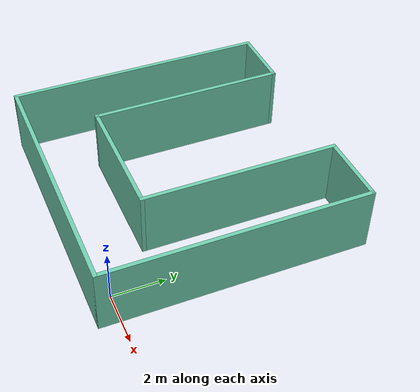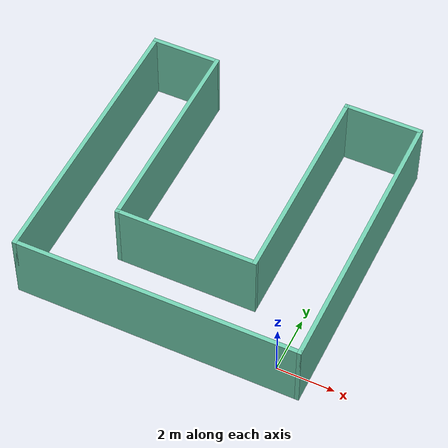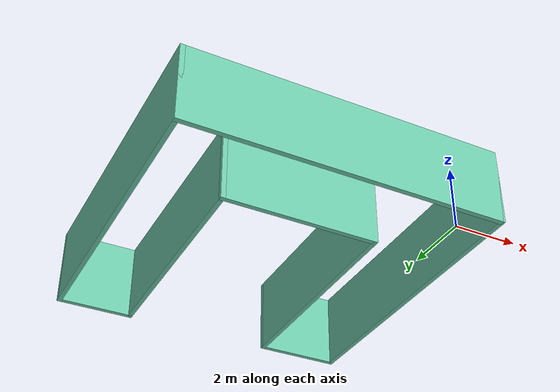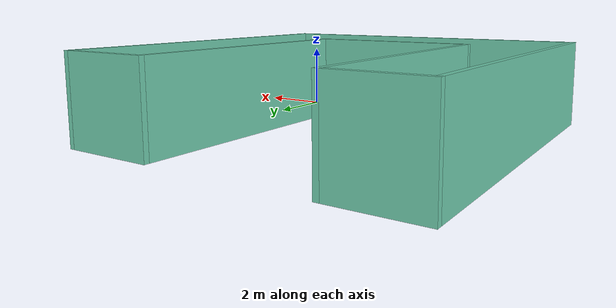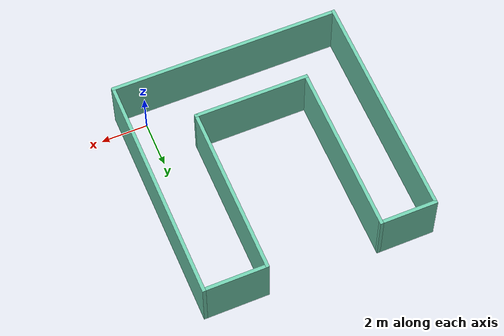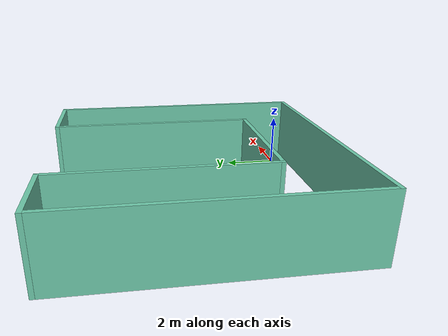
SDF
<?xml version='1.0'?>
<sdf version='1.6'>
  <model name='ZerdeWorld'>
    <pose frame=''>-3.8766 4.2078 0 0 -0 0</pose>
    <link name='Wall_19'>
      <collision name='Wall_19_Collision'>
        <geometry>
          <box>
            <size>2.75 0.15 2.5</size>
          </box>
        </geometry>
        <pose frame=''>0 0 1.25 0 -0 0</pose>
      </collision>
      <visual name='Wall_19_Visual'>
        <pose frame=''>0 0 1.25 0 -0 0</pose>
        <geometry>
          <box>
            <size>2.75 0.15 2.5</size>
          </box>
        </geometry>
        <material>
          <script>
            <uri>file://media/materials/scripts/gazebo.material</uri>
            <name>Gazebo/Grey</name>
          </script>
          <ambient>0.435294 0.796078 0.67451 1</ambient>
        </material>
        <meta>
          <layer>0</layer>
        </meta>
      </visual>
      <pose frame=''>3.575 4.925 0 0 -0 3.14159</pose>
    </link>
    <link name='Wall_20'>
      <collision name='Wall_20_Collision'>
        <geometry>
          <box>
            <size>7.5 0.15 2.5</size>
          </box>
        </geometry>
        <pose frame=''>0 0 1.25 0 -0 0</pose>
      </collision>
      <visual name='Wall_20_Visual'>
        <pose frame=''>0 0 1.25 0 -0 0</pose>
        <geometry>
          <box>
            <size>7.5 0.15 2.5</size>
          </box>
        </geometry>
        <material>
          <script>
            <uri>file://media/materials/scripts/gazebo.material</uri>
            <name>Gazebo/Grey</name>
          </script>
          <ambient>0.435294 0.796078 0.67451 1</ambient>
        </material>
        <meta>
          <layer>0</layer>
        </meta>
      </visual>
      <pose frame=''>2.275 1.25 0 0 0 -1.5708</pose>
    </link>
    <link name='Wall_21'>
      <collision name='Wall_21_Collision'>
        <geometry>
          <box>
            <size>5 0.15 2.5</size>
          </box>
        </geometry>
        <pose frame=''>0 0 1.25 0 -0 0</pose>
      </collision>
      <visual name='Wall_21_Visual'>
        <pose frame=''>0 0 1.25 0 -0 0</pose>
        <geometry>
          <box>
            <size>5 0.15 2.5</size>
          </box>
        </geometry>
        <material>
          <script>
            <uri>file://media/materials/scripts/gazebo.material</uri>
            <name>Gazebo/Grey</name>
          </script>
          <ambient>0.435294 0.796078 0.67451 1</ambient>
        </material>
        <meta>
          <layer>0</layer>
        </meta>
      </visual>
      <pose frame=''>-0.15 -2.425 0 0 -0 3.14159</pose>
    </link>
    <link name='Wall_22'>
      <collision name='Wall_22_Collision'>
        <geometry>
          <box>
            <size>7.5 0.15 2.5</size>
          </box>
        </geometry>
        <pose frame=''>0 0 1.25 0 -0 0</pose>
      </collision>
      <visual name='Wall_22_Visual'>
        <pose frame=''>0 0 1.25 0 -0 0</pose>
        <geometry>
          <box>
            <size>7.5 0.15 2.5</size>
          </box>
        </geometry>
        <material>
          <script>
            <uri>file://media/materials/scripts/gazebo.material</uri>
            <name>Gazebo/Grey</name>
          </script>
          <ambient>0.435294 0.796078 0.67451 1</ambient>
        </material>
        <meta>
          <layer>0</layer>
        </meta>
      </visual>
      <pose frame=''>-2.575 1.25 0 0 -0 1.5708</pose>
    </link>
    <link name='Wall_23'>
      <collision name='Wall_23_Collision'>
        <geometry>
          <box>
            <size>2.5 0.15 2.5</size>
          </box>
        </geometry>
        <pose frame=''>0 0 1.25 0 -0 0</pose>
      </collision>
      <visual name='Wall_23_Visual'>
        <pose frame=''>0 0 1.25 0 -0 0</pose>
        <geometry>
          <box>
            <size>2.5 0.15 2.5</size>
          </box>
        </geometry>
        <material>
          <script>
            <uri>file://media/materials/scripts/gazebo.material</uri>
            <name>Gazebo/Grey</name>
          </script>
          <ambient>0.435294 0.796078 0.67451 1</ambient>
        </material>
        <meta>
          <layer>0</layer>
        </meta>
      </visual>
      <pose frame=''>-3.75 4.925 0 0 -0 3.14159</pose>
    </link>
    <link name='Wall_24'>
      <collision name='Wall_24_Collision'>
        <geometry>
          <box>
            <size>10 0.15 2.5</size>
          </box>
        </geometry>
        <pose frame=''>0 0 1.25 0 -0 0</pose>
      </collision>
      <visual name='Wall_24_Visual'>
        <pose frame=''>0 0 1.25 0 -0 0</pose>
        <geometry>
          <box>
            <size>10 0.15 2.5</size>
          </box>
        </geometry>
        <material>
          <script>
            <uri>file://media/materials/scripts/gazebo.material</uri>
            <name>Gazebo/Grey</name>
          </script>
          <ambient>0.435294 0.796078 0.67451 1</ambient>
        </material>
        <meta>
          <layer>0</layer>
        </meta>
      </visual>
      <pose frame=''>-4.925 0 0 0 0 -1.5708</pose>
    </link>
    <link name='Wall_26'>
      <collision name='Wall_26_Collision'>
        <geometry>
          <box>
            <size>10 0.15 2.5</size>
          </box>
        </geometry>
        <pose frame=''>0 0 1.25 0 -0 0</pose>
      </collision>
      <visual name='Wall_26_Visual'>
        <pose frame=''>0 0 1.25 0 -0 0</pose>
        <geometry>
          <box>
            <size>10 0.15 2.5</size>
          </box>
        </geometry>
        <material>
          <script>
            <uri>file://media/materials/scripts/gazebo.material</uri>
            <name>Gazebo/Grey</name>
          </script>
          <ambient>0.435294 0.796078 0.67451 1</ambient>
        </material>
        <meta>
          <layer>0</layer>
        </meta>
      </visual>
      <pose frame=''>0 -4.925 0 0 -0 0</pose>
    </link>
    <link name='Wall_28'>
      <collision name='Wall_28_Collision'>
        <geometry>
          <box>
            <size>10 0.15 2.5</size>
          </box>
        </geometry>
        <pose frame=''>0 0 1.25 0 -0 0</pose>
      </collision>
      <visual name='Wall_28_Visual'>
        <pose frame=''>0 0 1.25 0 -0 0</pose>
        <geometry>
          <box>
            <size>10 0.15 2.5</size>
          </box>
        </geometry>
        <material>
          <script>
            <uri>file://media/materials/scripts/gazebo.material</uri>
            <name>Gazebo/Grey</name>
          </script>
          <ambient>0.435294 0.796078 0.67451 1</ambient>
        </material>
        <meta>
          <layer>0</layer>
        </meta>
      </visual>
      <pose frame=''>4.925 0 0 0 -0 1.5708</pose>
    </link>
    <static>1</static>
  </model>
</sdf>
